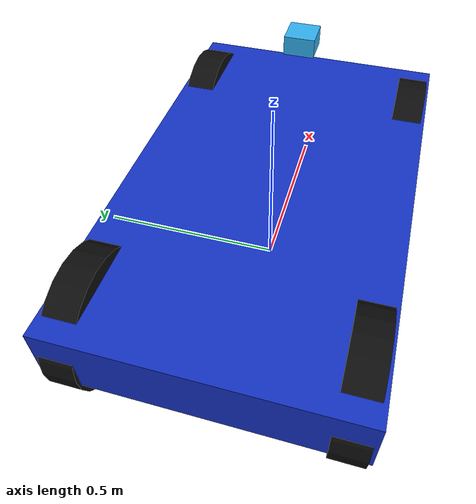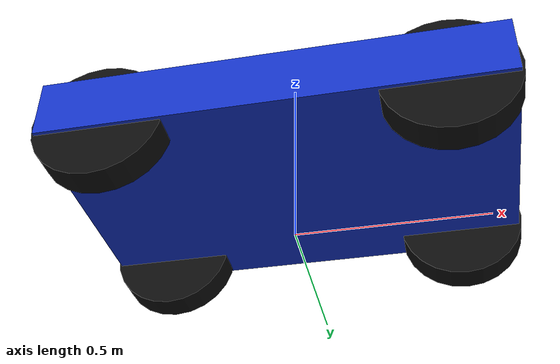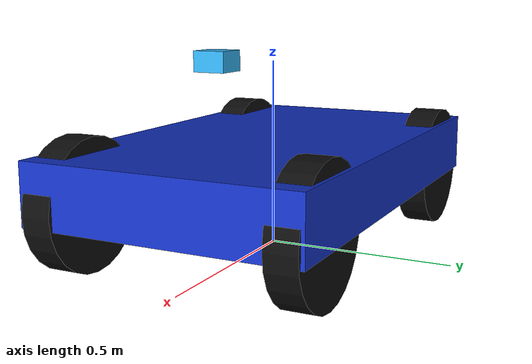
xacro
<?xml version="1.0"?>
<robot name="ackermann_4w_laser" xmlns:xacro="http://www.ros.org/wiki/xacro">
  <!-- Simplified 4-wheel Ackermann-like model: front axle steering + rear drive helper wheel. -->

  <xacro:property name="wheel_r" value="0.17"/>
  <xacro:property name="wheel_w" value="0.08"/>
  <xacro:property name="track" value="0.62"/>
  <xacro:property name="wheelbase" value="0.86"/>

  <link name="base_link"/>

  <link name="chassis">
    <visual>
      <origin xyz="0 0 0.22" rpy="0 0 0"/>
      <geometry>
        <box size="1.18 0.72 0.16"/>
      </geometry>
      <material name="chassis_blue">
        <color rgba="0.08 0.20 0.78 1"/>
      </material>
    </visual>
    <collision>
      <origin xyz="0 0 0.22" rpy="0 0 0"/>
      <geometry>
        <box size="1.18 0.72 0.16"/>
      </geometry>
    </collision>
    <inertial>
      <origin xyz="0 0 0.22" rpy="0 0 0"/>
      <mass value="22.0"/>
      <inertia ixx="1.35" ixy="0" ixz="0" iyy="3.10" iyz="0" izz="3.70"/>
    </inertial>
  </link>

  <joint name="base_to_chassis" type="fixed">
    <parent link="base_link"/>
    <child link="chassis"/>
    <origin xyz="0 0 0" rpy="0 0 0"/>
  </joint>

  <link name="front_axle">
    <visual>
      <geometry>
        <box size="0.10 ${track} 0.05"/>
      </geometry>
      <material name="dark">
        <color rgba="0.2 0.2 0.2 1"/>
      </material>
    </visual>
    <collision>
      <geometry>
        <box size="0.10 ${track} 0.05"/>
      </geometry>
    </collision>
    <inertial>
      <mass value="1.0"/>
      <inertia ixx="0.01" ixy="0" ixz="0" iyy="0.02" iyz="0" izz="0.02"/>
    </inertial>
  </link>

  <joint name="front_steering_joint" type="fixed">
    <parent link="chassis"/>
    <child link="front_axle"/>
    <origin xyz="${wheelbase/2.0} 0 ${wheel_r}" rpy="0 0 0"/>
  </joint>

  <xacro:macro name="wheel_link" params="name">
    <link name="${name}">
      <visual>
        <origin xyz="0 0 0" rpy="1.57079632679 0 0"/>
        <geometry>
          <cylinder radius="${wheel_r}" length="${wheel_w}"/>
        </geometry>
        <material name="wheel_black">
          <color rgba="0.05 0.05 0.05 1"/>
        </material>
      </visual>
      <collision>
        <origin xyz="0 0 0" rpy="1.57079632679 0 0"/>
        <geometry>
          <cylinder radius="${wheel_r}" length="${wheel_w}"/>
        </geometry>
      </collision>
      <inertial>
        <mass value="1.2"/>
        <inertia ixx="0.015" ixy="0" ixz="0" iyy="0.010" iyz="0" izz="0.010"/>
      </inertial>
    </link>
  </xacro:macro>

  <xacro:wheel_link name="front_left_wheel"/>
  <xacro:wheel_link name="front_right_wheel"/>
  <xacro:wheel_link name="rear_left_wheel"/>
  <xacro:wheel_link name="rear_right_wheel"/>

  <joint name="front_left_wheel_joint" type="continuous">
    <parent link="front_axle"/>
    <child link="front_left_wheel"/>
    <origin xyz="0 ${track/2.0} 0" rpy="0 0 0"/>
    <axis xyz="0 1 0"/>
    <dynamics damping="0.08" friction="0.02"/>
  </joint>

  <joint name="front_right_wheel_joint" type="continuous">
    <parent link="front_axle"/>
    <child link="front_right_wheel"/>
    <origin xyz="0 ${-track/2.0} 0" rpy="0 0 0"/>
    <axis xyz="0 1 0"/>
    <dynamics damping="0.08" friction="0.02"/>
  </joint>

  <joint name="rear_left_wheel_joint" type="continuous">
    <parent link="chassis"/>
    <child link="rear_left_wheel"/>
    <origin xyz="${-wheelbase/2.0} ${track/2.0} ${wheel_r}" rpy="0 0 0"/>
    <axis xyz="0 1 0"/>
    <dynamics damping="0.08" friction="0.02"/>
  </joint>

  <joint name="rear_right_wheel_joint" type="continuous">
    <parent link="chassis"/>
    <child link="rear_right_wheel"/>
    <origin xyz="${-wheelbase/2.0} ${-track/2.0} ${wheel_r}" rpy="0 0 0"/>
    <axis xyz="0 1 0"/>
    <dynamics damping="0.08" friction="0.02"/>
  </joint>

  <!-- Hidden helper wheel lets tricycle plugin provide robust propulsion with cmd_vel. -->
  <link name="drive_wheel">
    <visual>
      <geometry>
        <cylinder radius="0.001" length="0.001"/>
      </geometry>
    </visual>
    <collision>
      <origin xyz="0 0 0" rpy="1.57079632679 0 0"/>
      <geometry>
        <cylinder radius="${wheel_r}" length="0.02"/>
      </geometry>
    </collision>
    <inertial>
      <mass value="0.8"/>
      <inertia ixx="0.008" ixy="0" ixz="0" iyy="0.006" iyz="0" izz="0.006"/>
    </inertial>
  </link>

  <joint name="drive_wheel_joint" type="continuous">
    <parent link="chassis"/>
    <child link="drive_wheel"/>
    <origin xyz="${-wheelbase/2.0} 0 ${wheel_r}" rpy="0 0 0"/>
    <axis xyz="0 1 0"/>
    <dynamics damping="0.02" friction="0.01"/>
  </joint>

  <joint name="hokuyo_joint" type="fixed">
    <parent link="base_link"/>
    <child link="hokuyo_link"/>
    <origin xyz="0.30 0 0.52" rpy="0 0 0"/>
  </joint>

  <link name="hokuyo_link">
    <visual>
      <geometry><box size="0.08 0.08 0.05"/></geometry>
      <material name="laser_blue"><color rgba="0.20 0.70 0.95 1"/></material>
    </visual>
    <collision>
      <geometry><box size="0.08 0.08 0.05"/></geometry>
    </collision>
    <inertial>
      <mass value="0.25"/>
      <inertia ixx="0.0004" ixy="0" ixz="0" iyy="0.0004" iyz="0" izz="0.0004"/>
    </inertial>
  </link>

  <gazebo reference="chassis">
    <material>Gazebo/Blue</material>
  </gazebo>

  <gazebo reference="front_left_wheel"><mu1>1.6</mu1><mu2>1.6</mu2><kp>500000</kp><kd>1.0</kd></gazebo>
  <gazebo reference="front_right_wheel"><mu1>1.6</mu1><mu2>1.6</mu2><kp>500000</kp><kd>1.0</kd></gazebo>
  <gazebo reference="rear_left_wheel"><mu1>1.8</mu1><mu2>1.8</mu2><kp>500000</kp><kd>1.0</kd></gazebo>
  <gazebo reference="rear_right_wheel"><mu1>1.8</mu1><mu2>1.8</mu2><kp>500000</kp><kd>1.0</kd></gazebo>
  <gazebo reference="drive_wheel"><mu1>2.0</mu1><mu2>2.0</mu2><kp>500000</kp><kd>1.0</kd></gazebo>

  <gazebo>
    <plugin name="front_left_wheel_state_publisher" filename="libgazebo_ros_joint_state_publisher.so">
      <robotNamespace>/</robotNamespace>
      <jointName>front_left_wheel_joint</jointName>
      <updateRate>40.0</updateRate>
    </plugin>
  </gazebo>

  <gazebo>
    <plugin name="front_right_wheel_state_publisher" filename="libgazebo_ros_joint_state_publisher.so">
      <robotNamespace>/</robotNamespace>
      <jointName>front_right_wheel_joint</jointName>
      <updateRate>40.0</updateRate>
    </plugin>
  </gazebo>

  <gazebo>
    <plugin name="rear_left_wheel_state_publisher" filename="libgazebo_ros_joint_state_publisher.so">
      <robotNamespace>/</robotNamespace>
      <jointName>rear_left_wheel_joint</jointName>
      <updateRate>40.0</updateRate>
    </plugin>
  </gazebo>

  <gazebo>
    <plugin name="rear_right_wheel_state_publisher" filename="libgazebo_ros_joint_state_publisher.so">
      <robotNamespace>/</robotNamespace>
      <jointName>rear_right_wheel_joint</jointName>
      <updateRate>40.0</updateRate>
    </plugin>
  </gazebo>

  <gazebo>
    <plugin name="drive_wheel_state_publisher" filename="libgazebo_ros_joint_state_publisher.so">
      <robotNamespace>/</robotNamespace>
      <jointName>drive_wheel_joint</jointName>
      <updateRate>40.0</updateRate>
    </plugin>
  </gazebo>

  <gazebo>
    <plugin name="ackermann_4w_drive" filename="libgazebo_ros_planar_move.so">
      <robotNamespace>/</robotNamespace>
      <commandTopic>cmd_vel</commandTopic>
      <odometryTopic>odom</odometryTopic>
      <odometryFrame>odom</odometryFrame>
      <robotBaseFrame>base_link</robotBaseFrame>
      <publishTF>true</publishTF>
      <odometryRate>40.0</odometryRate>
    </plugin>
  </gazebo>

  <gazebo reference="hokuyo_link">
    <material>Gazebo/Black</material>
    <sensor type="ray" name="hokuyo_sensor">
      <pose>0 0 0 0 0 0</pose>
      <visualize>true</visualize>
      <update_rate>20</update_rate>
      <ray>
        <scan>
          <horizontal>
            <samples>720</samples>
            <resolution>1</resolution>
            <min_angle>-2.26889</min_angle>
            <max_angle>2.26889</max_angle>
          </horizontal>
        </scan>
        <range>
          <min>0.08</min>
          <max>25.0</max>
        </range>
      </ray>
      <plugin name="gazebo_ros_laser" filename="libgazebo_ros_laser.so">
        <topicName>/scan</topicName>
        <frameName>hokuyo_link</frameName>
      </plugin>
    </sensor>
  </gazebo>
</robot>
